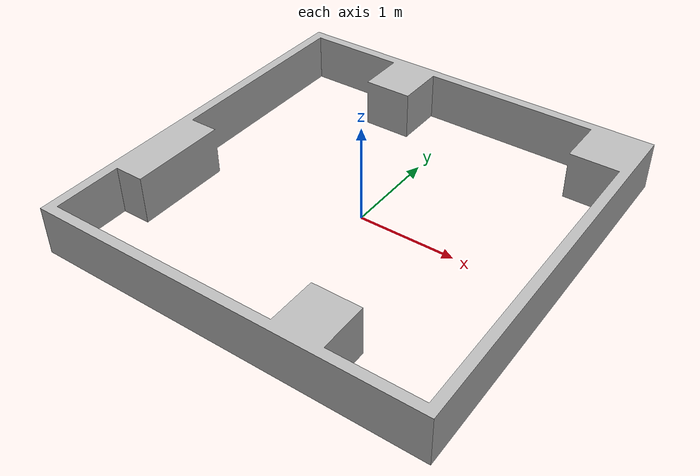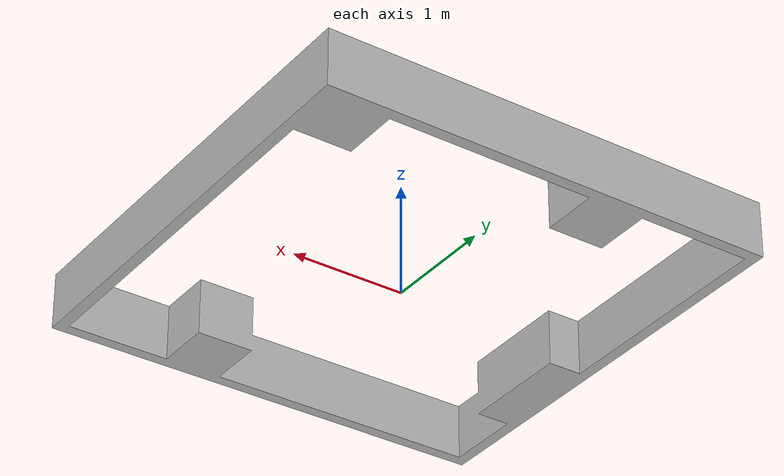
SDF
<?xml version='1.0'?>
<sdf version="1.4">
<model name="room_square">
  <pose>0 0 0 0 0 0</pose>
  <static>true</static>
    <link name="link">
      <inertial>
        <mass>1.0</mass>
        <inertia>
          <ixx>0.083</ixx>
          <ixy>0.0</ixy>
          <ixz>0.0</ixz>
          <iyy>0.083</iyy>
          <iyz>0.0</iyz>
          <izz>0.083</izz>
        </inertia>
      </inertial>
      <collision name="collision">
        <geometry>
          <mesh>
            <uri>model://room_square/room_square.stl</uri>
          </mesh>
        </geometry>
      </collision>
      <visual name="visual">
        <geometry>
          <mesh>
            <uri>model://room_square/room_square.stl</uri>
          </mesh>
        </geometry>
      </visual>
    </link>
  </model>
</sdf>
